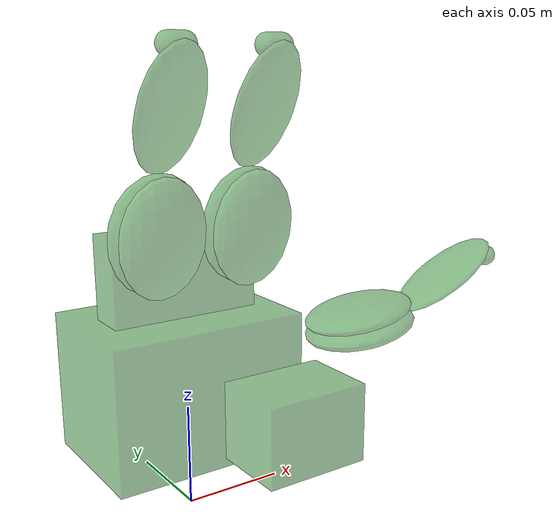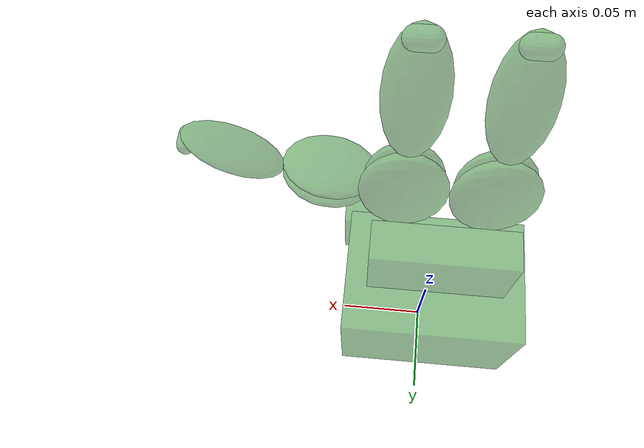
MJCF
<mujoco model="DIP-Flex_open_chain">
  <compiler angle="radian" meshdir="mjcf/assets/DIP-Flex_opened_kinematics"/>

  <option apirate="100" iterations="20"/>

  <default>
    <!-- main -->
    <default class="vizual">
      <geom contype="1" conaffinity="0" group="2" material="MatViz" rgba="0.1 0.1 0.1 0.1"/>
    </default>

    <default class="simpl_collision">
      <geom contype="4" conaffinity="0" group="1" material="MatViz" rgba="0.1 0.5 0.1 0.5"/>
    </default>

    <!-- joints -->
    <default class="asset_class">
      <joint limited="true" margin="0.01" armature="0.001" damping="0.1" frictionloss="0.001"/>
      <geom friction="1 0.005 0.001" margin="0.0005"/>
      <site rgba="1 0 0 1" />
      <general ctrllimited="true" forcelimited="true" />
    </default>

    <!-- sites -->
    <default class="finger_collision_hard">
      <geom condim="4" friction="1 0.001 2e-05" solref="-7000 -167"/>
    </default>
    <default class="finger_collision_soft">
      <geom condim="6" friction="1 0.005 0.0001" solref="-2500 -100"/>
    </default>
  </default>

  <asset>
    <material name="MatViz" specular="0.75" shininess="0.1" reflectance="0.5" rgba="0.3 0.3 0.3 1" />

    <texture type="skybox" builtin="gradient" rgb1="1 1 1" rgb2="1 1 1" width="265" height="256"/>
    <mesh name="base_link" file="base_link.stl" />
    <mesh name="Link_pinkie_abduction" file="Link_pinkie_abduction.stl" />
    <mesh name="Link_pinkie_PPflexion" file="Link_pinkie_PPflexion.stl" />
    <mesh name="Link_pinkie_DPflexion" file="Link_pinkie_DPflexion.stl" />
    <mesh name="Link_index_abduction" file="Link_index_abduction.stl" />
    <mesh name="Link_index_PPflexion" file="Link_index_PPflexion.stl" />
    <mesh name="Link_index_DPflexion" file="Link_index_DPflexion.stl" />
    <mesh name="Link_thumb_rotation" file="Link_thumb_rotation.stl" />
    <mesh name="Link_thumb_abduction" file="Link_thumb_abduction.stl" />
    <mesh name="Link_thumb_PPflexion" file="Link_thumb_PPflexion.stl" />
    <mesh name="Link_thumb_DPflexion" file="Link_thumb_DPflexion.stl" />
  </asset>

  <worldbody>
    <light directional="true" diffuse="0.4 0.4 0.4" specular="0.1 0.1 0.1" pos="0 0 5.0" dir="0 0 -1" castshadow="false" />
    <light directional="true" diffuse="0.6 0.6 0.6" specular="0.2 0.2 0.2" pos="0 0 4" dir="0 0 -1" />

    <camera name="fixed" pos="0 -3.0 0.6166426767051374" xyaxes="1 0 0 0 0 1" />
    <camera name="track" mode="trackcom" pos="0 -3.0 0.6166426767051374" xyaxes="1 0 0 0 0 1" />

    <!-- PALM -->
    <body name="root" pos="0 0 0.116" quat="1 0 0 0">
      <geom name="root_geom_BOX_1" class="simpl_collision" type="box" pos = "0   0.007  0" size = "0.036  0.01  0.02" mass="0.25" />
      <geom name="root_geom_BOX_2" class="simpl_collision" type="box" pos = "0   0.007  -0.054 " size = "0.0475 0.0335  0.0335" mass="0.25" />
      <!-- FINGER PINKIE -->
      <body name="Link_pinkie_abduction" pos="-0.022 0 0" quat="0.499998 0.5 -0.5 0.500002">
        <inertial pos="0.0087427 0.0066478 -0.0042803" quat="0.908826 0.311338 -0.27734 -0.0136686" mass="0.014579" diaginertia="5.54964e-06 4.48262e-06 2.72704e-06" />
        <joint name="Joint_pinkie_abduction" pos="0 0 0" axis="0 0 1" range="0 1.57" armature="8e-05" damping="0.009"/>

        <body name="Link_pinkie_PPflexion" pos="0 0 0.0135" quat="0.705383 -0.705386 -0.0493265 -0.0493267">
          <inertial pos="0.023519 -0.0040969 -9.2833e-06" quat="0.496939 0.49772 0.503047 0.502265" mass="0.037156" diaginertia="1.16828e-05 8.07601e-06 4.62059e-06" />
          <joint name="Joint_pinkie_PPflexion" pos="0 0 0" axis="0 0 -1" range="0 1.57" armature="8e-05" damping="0.009"/>
          <geom name = "pinkie_PP_ELL1" type="ellipsoid" pos = "0.024 -0.008 0" size="0.027 0.0058 0.02" class="simpl_collision"/>
          <geom name = "pinkie_PP_ELL2" type="ellipsoid" pos = "0.024 -0.0014 0" size="0.027 0.007 0.022" class="simpl_collision"/>

          <body name="Link_pinkie_DPflexion" pos="0.05 0 0" quat="0.984984 0 0 -0.172646">
            <inertial pos="0.008247 0.011323 -0.00021313" quat="-0.245607 0.662281 0.246851 0.66342" mass="0.048224" diaginertia="5.79821e-06 4.61748e-06 4.23322e-06" />
            <joint name="Joint_pinkie_DPflexion" pos="0 0 0" axis="0 0 -1" range="0 1.57" armature="8e-05" damping="0.009"/>
            <geom name = "pinkie_DP_ELL" type="ellipsoid" pos = "0.03 -0.0005 0" size="0.03 0.004 0.015" class="simpl_collision"/>
            <geom name = "pinkie_DP_CAP2" type="capsule" pos = "0.055 0.005 0" size="0.005 0.0035" class="simpl_collision"/>

          </body>
        </body>

      </body>

      <!-- FINGER INDEX -->
      <body name="Link_index_abduction" pos="0.022 0 0" quat="0.499998 0.5 -0.5 0.500002">
        <inertial pos="0.00874274 -0.00664781 -0.00428031" quat="0.908825 -0.31134 -0.277341 0.0136712" mass="0.014579" diaginertia="5.54959e-06 4.4826e-06 2.72703e-06" />
        <joint name="Joint_index_abduction" pos="0 0 0" axis="0 0 -1" range="0 1.57" armature="8e-05" damping="0.009"/>

        <body name="Link_index_PPflexion" pos="0 0 0.0135" quat="0.705383 -0.705386 -0.0493265 -0.0493267">
          <inertial pos="0.0235185 -0.00409688 -0.000291063" quat="0.497746 0.496912 0.502224 0.503088" mass="0.0371563" diaginertia="1.16823e-05 8.07597e-06 4.62054e-06" />
          <joint name="Joint_index_PPflexion" pos="0 0 0" axis="0 0 -1" range="0 1.57" armature="8e-05" damping="0.009"/>
          <geom name = "index_PP_ELL1" type="ellipsoid" pos = "0.024 -0.008 0" size="0.027 0.0058 0.02" class="simpl_collision"/>
          <geom name = "index_PP_ELL2" type="ellipsoid" pos = "0.024 -0.0014 0" size="0.027 0.007 0.022" class="simpl_collision"/>

          <body name="Link_index_DPflexion" pos="0.05 0 0" quat="0.984984 0 0 -0.172646">
            <inertial pos="0.0199696 0.00918915 -0.000300157" quat="0.0325537 0.706363 -0.0323876 0.706358" mass="0.0184277" diaginertia="3.35052e-06 3.19075e-06 1.41972e-06" />
            <joint name="Joint_index_DPflexion" pos="0 0 0" axis="0 0 -1" range="0 1.57" armature="8e-05" damping="0.009"/>
            <geom name = "index_DP_ELL" type="ellipsoid" pos = "0.03 -0.0005 0" size="0.03 0.004 0.015" class="simpl_collision"/>
            <geom name = "index_DP_CAP2" type="capsule" pos = "0.055 0.005 0" size="0.005 0.0035" class="simpl_collision"/>
          </body>
        </body>
      </body>

      <!-- FINGER THUMB -->
      <body name="Link_thumb_rotation" pos="0.0392 -0.031 -0.062" quat="0.707105 0.707108 0 0">
        <inertial pos="-0.0113436 0 0.00225278" quat="0.508482 0.508482 -0.491372 0.491372" mass="0.00539304" diaginertia="1.19125e-06 7.86827e-07 4.45909e-07" />
        <joint name="Joint_thumb_rotation" pos="0 0 0" axis="0 0 -1" range="-1.57 1.57" armature="8e-05" damping="0.009"/>
        <geom name="Joint_thumb_rotation_BOX" class="simpl_collision" type="box" pos = "-0.012  0  0.0185 " size = "0.025 0.0185 0.0185"/>
        <body name="Link_thumb_abduction" pos="0 0.021 0.02" quat="0.707105 -0.707108 0 0">
          <inertial pos="0.00874274 -0.00664781 -0.00428031" quat="0.908825 -0.31134 -0.277341 0.0136712" mass="0.014579" diaginertia="5.54959e-06 4.4826e-06 2.72703e-06" />
          <joint name="Joint_thumb_abduction" pos="0 0 0" axis="0 0 -1" range="0 1.57" armature="8e-05" damping="0.009"/>

          <body name="Link_thumb_PPflexion" pos="0 0 0.0135" quat="0.705383 -0.705386 -0.0493265 -0.0493267">
            <inertial pos="0.0235185 -0.00409688 -0.000291063" quat="0.497746 0.496912 0.502224 0.503088" mass="0.0371563" diaginertia="1.16823e-05 8.07597e-06 4.62054e-06" />
            <joint name="Joint_thumb_PPflexion" pos="0 0 0" axis="0 0 -1" range="0 1.57" armature="8e-05" damping="0.009"/>
            <geom name = "thumb_PP_ELL1" type="ellipsoid" pos = "0.024 -0.008 0" size="0.027 0.0058 0.02" class="simpl_collision"/>
            <geom name = "thumb_PP_ELL2" type="ellipsoid" pos = "0.024 -0.0014 0" size="0.027 0.007 0.022" class="simpl_collision"/>

            <body name="Link_thumb_DPflexion" pos="0.05 0 0" quat="0.984984 0 0 -0.172646">
              <inertial pos="0.0199696 0.00918915 -0.000300157" quat="0.0325537 0.706363 -0.0323876 0.706358" mass="0.0184277" diaginertia="3.35052e-06 3.19075e-06 1.41972e-06" />
              <joint name="Joint_thumb_DPflexion" pos="0 0 0" axis="0 0 -1" range="0 1.57" armature="8e-05" damping="0.009"/>
              <geom name = "thumb_DP_ELL1" type="ellipsoid" pos = "0.03 -0.0005 0" size="0.03 0.004 0.015" class="simpl_collision"/>
              <geom name = "thumb_DP_CAP2" type="capsule" pos = "0.055 0.005 0" size="0.005 0.0035" class="simpl_collision"/>
            </body>
          </body>

        </body>
      </body>
    </body>
  </worldbody>

  <actuator>

    <position name="Joint_pinkie_abduction_p" joint="Joint_pinkie_abduction" ctrlrange="0 1.57" forcerange="-2 2"  />
    <position name="Joint_pinkie_PPflexion_p" joint="Joint_pinkie_PPflexion" ctrlrange="0 1.57" forcerange="-2 2"  />
    <position name="Joint_pinkie_DPflexion_p" joint="Joint_pinkie_DPflexion" ctrlrange="0 1.57" forcerange="-2 2"  />

    <position name="Joint_index_abduction_p" joint="Joint_index_abduction" ctrlrange="0 1.57" forcerange="-2 2"  />
    <position name="Joint_index_PPflexion_p" joint="Joint_index_PPflexion" ctrlrange="0 1.57" forcerange="-2 2"  />
    <position name="Joint_index_DPflexion_p" joint="Joint_index_DPflexion" ctrlrange="0 1.57" forcerange="-2 2"  />

    <position name="Joint_thumb_abduction_p" joint="Joint_thumb_abduction" ctrlrange="0 1.57" forcerange="-2 2"  />
    <position name="Joint_thumb_rotation_p" joint="Joint_thumb_rotation" ctrlrange="-1.57 1.57" forcerange="-2 2"  />
    <position name="Joint_thumb_PPflexion_p" joint="Joint_thumb_PPflexion" ctrlrange="0 1.57" forcerange="-2 2"  />
    <position name="Joint_thumb_DPflexion_p" joint="Joint_thumb_DPflexion" ctrlrange="0 1.57" forcerange="-2 2" />

  </actuator>

  <sensor>

  </sensor>

</mujoco>
